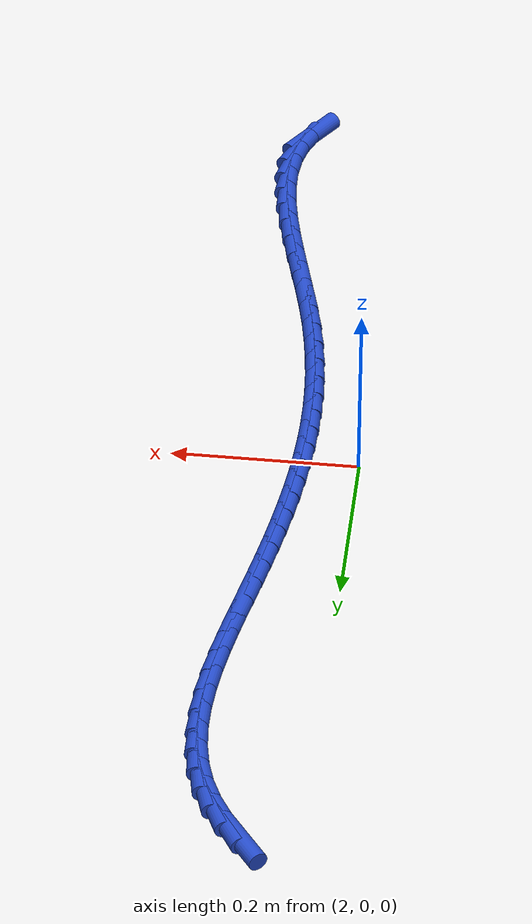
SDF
<sdf version="1.6">
 <world name="default">
  <model name="ground_plane">
   <static>1</static>
   <link name="link">
    <collision name="collision">
     <geometry><plane><normal>0 0 1</normal><size>100 100</size></plane></geometry>
     <surface><friction><ode><mu>100</mu><mu2>50</mu2></ode></friction></surface>
    </collision>
    <visual name="visual">
     <cast_shadows>0</cast_shadows>
     <geometry><plane><normal>0 0 1</normal><size>100 100</size></plane></geometry>
     <material>
      <script><uri>file://media/materials/scripts/gazebo.material</uri><name>Gazebo/WhiteGlow</name></script>
     </material>
    </visual>
   </link>
  </model>
  <model name="line">
   <link name="link_102">
    <pose>2.0627104055295264 0.5759210870289041 0.01 0 1.57 -0.9372216563298224</pose>
    <collision name="collision">
     <geometry><cylinder><radius>0.01</radius><length>0.08</length></cylinder></geometry>
    </collision>
    <visual name="visual">
     <material>
      <script><name>Gazebo/Blue</name><uri>file://media/materials/scripts/gazebo.material</uri></script>
     </material>
     <geometry><cylinder><radius>0.01</radius><length>0.08</length></cylinder></geometry>
    </visual>
   </link>
   <link name="link_103">
    <pose>2.0789447824061393 0.5538215944182481 0.01 0 1.57 -1.0368167671548376</pose>
    <collision name="collision">
     <geometry><cylinder><radius>0.01</radius><length>0.08</length></cylinder></geometry>
    </collision>
    <visual name="visual">
     <material>
      <script><name>Gazebo/Blue</name><uri>file://media/materials/scripts/gazebo.material</uri></script>
     </material>
     <geometry><cylinder><radius>0.01</radius><length>0.08</length></cylinder></geometry>
    </visual>
   </link>
   <link name="link_104">
    <pose>2.0926317182823566 0.5306734322668639 0.01 0 1.57 -1.15218257649914</pose>
    <collision name="collision">
     <geometry><cylinder><radius>0.01</radius><length>0.08</length></cylinder></geometry>
    </collision>
    <visual name="visual">
     <material>
      <script><name>Gazebo/Blue</name><uri>file://media/materials/scripts/gazebo.material</uri></script>
     </material>
     <geometry><cylinder><radius>0.01</radius><length>0.08</length></cylinder></geometry>
    </visual>
   </link>
   <link name="link_105">
    <pose>2.1034244549248156 0.5064152326901417 0.01 0 1.57 -1.2749694891609564</pose>
    <collision name="collision">
     <geometry><cylinder><radius>0.01</radius><length>0.08</length></cylinder></geometry>
    </collision>
    <visual name="visual">
     <material>
      <script><name>Gazebo/Blue</name><uri>file://media/materials/scripts/gazebo.material</uri></script>
     </material>
     <geometry><cylinder><radius>0.01</radius><length>0.08</length></cylinder></geometry>
    </visual>
   </link>
   <link name="link_106">
    <pose>2.1111575230042687 0.48104174627011514 0.01 0 1.57 -1.3857823774488294</pose>
    <collision name="collision">
     <geometry><cylinder><radius>0.01</radius><length>0.08</length></cylinder></geometry>
    </collision>
    <visual name="visual">
     <material>
      <script><name>Gazebo/Blue</name><uri>file://media/materials/scripts/gazebo.material</uri></script>
     </material>
     <geometry><cylinder><radius>0.01</radius><length>0.08</length></cylinder></geometry>
    </visual>
   </link>
   <link name="link_107">
    <pose>2.11609132046975 0.4546795519473599 0.01 0 1.57 -1.480763682097601</pose>
    <collision name="collision">
     <geometry><cylinder><radius>0.01</radius><length>0.08</length></cylinder></geometry>
    </collision>
    <visual name="visual">
     <material>
      <script><name>Gazebo/Blue</name><uri>file://media/materials/scripts/gazebo.material</uri></script>
     </material>
     <geometry><cylinder><radius>0.01</radius><length>0.08</length></cylinder></geometry>
    </visual>
   </link>
   <link name="link_108">
    <pose>2.1185473353641116 0.42747413926488914 0.01 0 1.57 -1.5600552838995518</pose>
    <collision name="collision">
     <geometry><cylinder><radius>0.01</radius><length>0.08</length></cylinder></geometry>
    </collision>
    <visual name="visual">
     <material>
      <script><name>Gazebo/Blue</name><uri>file://media/materials/scripts/gazebo.material</uri></script>
     </material>
     <geometry><cylinder><radius>0.01</radius><length>0.08</length></cylinder></geometry>
    </visual>
   </link>
   <link name="link_109">
    <pose>2.118847055730204 0.39957099776571603 0.01 0 1.57 1.516901439807371</pose>
    <collision name="collision">
     <geometry><cylinder><radius>0.01</radius><length>0.08</length></cylinder></geometry>
    </collision>
    <visual name="visual">
     <material>
      <script><name>Gazebo/Blue</name><uri>file://media/materials/scripts/gazebo.material</uri></script>
     </material>
     <geometry><cylinder><radius>0.01</radius><length>0.08</length></cylinder></geometry>
    </visual>
   </link>
   <link name="link_110">
    <pose>2.1173119696108804 0.3711156169928539 0.01 0 1.57 1.465566937811527</pose>
    <collision name="collision">
     <geometry><cylinder><radius>0.01</radius><length>0.08</length></cylinder></geometry>
    </collision>
    <visual name="visual">
     <material>
      <script><name>Gazebo/Blue</name><uri>file://media/materials/scripts/gazebo.material</uri></script>
     </material>
     <geometry><cylinder><radius>0.01</radius><length>0.08</length></cylinder></geometry>
    </visual>
   </link>
   <link name="link_111">
    <pose>2.1142635650489896 0.3422534864893157 0.01 0 1.57 1.4262167058683846</pose>
    <collision name="collision">
     <geometry><cylinder><radius>0.01</radius><length>0.08</length></cylinder></geometry>
    </collision>
    <visual name="visual">
     <material>
      <script><name>Gazebo/Blue</name><uri>file://media/materials/scripts/gazebo.material</uri></script>
     </material>
     <geometry><cylinder><radius>0.01</radius><length>0.08</length></cylinder></geometry>
    </visual>
   </link>
   <link name="link_112">
    <pose>2.1100233300873854 0.31313009579811496 0.01 0 1.57 1.3977589306277203</pose>
    <collision name="collision">
     <geometry><cylinder><radius>0.01</radius><length>0.08</length></cylinder></geometry>
    </collision>
    <visual name="visual">
     <material>
      <script><name>Gazebo/Blue</name><uri>file://media/materials/scripts/gazebo.material</uri></script>
     </material>
     <geometry><cylinder><radius>0.01</radius><length>0.08</length></cylinder></geometry>
    </visual>
   </link>
   <link name="link_113">
    <pose>2.1049127527689167 0.28389093446226454 0.01 0 1.57 1.379414170548931</pose>
    <collision name="collision">
     <geometry><cylinder><radius>0.01</radius><length>0.08</length></cylinder></geometry>
    </collision>
    <visual name="visual">
     <material>
      <script><name>Gazebo/Blue</name><uri>file://media/materials/scripts/gazebo.material</uri></script>
     </material>
     <geometry><cylinder><radius>0.01</radius><length>0.08</length></cylinder></geometry>
    </visual>
   </link>
   <link name="link_114">
    <pose>2.099253321136437 0.2546814920247779 0.01 0 1.57 1.370754401483472</pose>
    <collision name="collision">
     <geometry><cylinder><radius>0.01</radius><length>0.08</length></cylinder></geometry>
    </collision>
    <visual name="visual">
     <material>
      <script><name>Gazebo/Blue</name><uri>file://media/materials/scripts/gazebo.material</uri></script>
     </material>
     <geometry><cylinder><radius>0.01</radius><length>0.08</length></cylinder></geometry>
    </visual>
   </link>
   <link name="link_115">
    <pose>2.093366523232796 0.22564725802866795 0.01 0 1.57 1.3717136348057213</pose>
    <collision name="collision">
     <geometry><cylinder><radius>0.01</radius><length>0.08</length></cylinder></geometry>
    </collision>
    <visual name="visual">
     <material>
      <script><name>Gazebo/Blue</name><uri>file://media/materials/scripts/gazebo.material</uri></script>
     </material>
     <geometry><cylinder><radius>0.01</radius><length>0.08</length></cylinder></geometry>
    </visual>
   </link>
   <link name="link_116">
    <pose>2.087573334248945 0.1969333083604876 0.01 0 1.57 1.3803424710623267</pose>
    <collision name="collision">
     <geometry><cylinder><radius>0.01</radius><length>0.08</length></cylinder></geometry>
    </collision>
    <visual name="visual">
     <material>
      <script><name>Gazebo/Blue</name><uri>file://media/materials/scripts/gazebo.material</uri></script>
     </material>
     <geometry><cylinder><radius>0.01</radius><length>0.08</length></cylinder></geometry>
    </visual>
   </link>
   <link name="link_117">
    <pose>2.082114853119767 0.16862029225788003 0.01 0 1.57 1.392193257259937</pose>
    <collision name="collision">
     <geometry><cylinder><radius>0.01</radius><length>0.08</length></cylinder></geometry>
    </collision>
    <visual name="visual">
     <material>
      <script><name>Gazebo/Blue</name><uri>file://media/materials/scripts/gazebo.material</uri></script>
     </material>
     <geometry><cylinder><radius>0.01</radius><length>0.08</length></cylinder></geometry>
    </visual>
   </link>
   <link name="link_118">
    <pose>2.0770663966589997 0.14065514229422976 0.01 0 1.57 1.4067287921422038</pose>
    <collision name="collision">
     <geometry><cylinder><radius>0.01</radius><length>0.08</length></cylinder></geometry>
    </collision>
    <visual name="visual">
     <material>
      <script><name>Gazebo/Blue</name><uri>file://media/materials/scripts/gazebo.material</uri></script>
     </material>
     <geometry><cylinder><radius>0.01</radius><length>0.08</length></cylinder></geometry>
    </visual>
   </link>
   <link name="link_119">
    <pose>2.072482658633461 0.11296815689068805 0.01 0 1.57 1.4239518117314232</pose>
    <collision name="collision">
     <geometry><cylinder><radius>0.01</radius><length>0.08</length></cylinder></geometry>
    </collision>
    <visual name="visual">
     <material>
      <script><name>Gazebo/Blue</name><uri>file://media/materials/scripts/gazebo.material</uri></script>
     </material>
     <geometry><cylinder><radius>0.01</radius><length>0.08</length></cylinder></geometry>
    </visual>
   </link>
   <link name="link_120">
    <pose>2.068418332809969 0.08548963446840664 0.01 0 1.57 1.4438221840645111</pose>
    <collision name="collision">
     <geometry><cylinder><radius>0.01</radius><length>0.08</length></cylinder></geometry>
    </collision>
    <visual name="visual">
     <material>
      <script><name>Gazebo/Blue</name><uri>file://media/materials/scripts/gazebo.material</uri></script>
     </material>
     <geometry><cylinder><radius>0.01</radius><length>0.08</length></cylinder></geometry>
    </visual>
   </link>
   <link name="link_121">
    <pose>2.064928112955342 0.05814987344853627 0.01 0 1.57 1.4662523359406185</pose>
    <collision name="collision">
     <geometry><cylinder><radius>0.01</radius><length>0.08</length></cylinder></geometry>
    </collision>
    <visual name="visual">
     <material>
      <script><name>Gazebo/Blue</name><uri>file://media/materials/scripts/gazebo.material</uri></script>
     </material>
     <geometry><cylinder><radius>0.01</radius><length>0.08</length></cylinder></geometry>
    </visual>
   </link>
   <link name="link_122">
    <pose>2.0620666928363987 0.030879172252228703 0.01 0 1.57 1.4911040980571764</pose>
    <collision name="collision">
     <geometry><cylinder><radius>0.01</radius><length>0.08</length></cylinder></geometry>
    </collision>
    <visual name="visual">
     <material>
      <script><name>Gazebo/Blue</name><uri>file://media/materials/scripts/gazebo.material</uri></script>
     </material>
     <geometry><cylinder><radius>0.01</radius><length>0.08</length></cylinder></geometry>
    </visual>
   </link>
   <link name="link_123">
    <pose>2.0598887662199576 0.0036078293006353776 0.01 0 1.57 1.5181876163176007</pose>
    <collision name="collision">
     <geometry><cylinder><radius>0.01</radius><length>0.08</length></cylinder></geometry>
    </collision>
    <visual name="visual">
     <material>
      <script><name>Gazebo/Blue</name><uri>file://media/materials/scripts/gazebo.material</uri></script>
     </material>
     <geometry><cylinder><radius>0.01</radius><length>0.08</length></cylinder></geometry>
    </visual>
   </link>
   <link name="link_124">
    <pose>2.0584490268728364 -0.023733856985092366 0.01 0 1.57 1.5472629151905024</pose>
    <collision name="collision">
     <geometry><cylinder><radius>0.01</radius><length>0.08</length></cylinder></geometry>
    </collision>
    <visual name="visual">
     <material>
      <script><name>Gazebo/Blue</name><uri>file://media/materials/scripts/gazebo.material</uri></script>
     </material>
     <geometry><cylinder><radius>0.01</radius><length>0.08</length></cylinder></geometry>
    </visual>
   </link>
   <link name="link_125">
    <pose>2.057802168561855 -0.05121558818380304 0.01 0 1.57 -1.56354814093621</pose>
    <collision name="collision">
     <geometry><cylinder><radius>0.01</radius><length>0.08</length></cylinder></geometry>
    </collision>
    <visual name="visual">
     <material>
      <script><name>Gazebo/Blue</name><uri>file://media/materials/scripts/gazebo.material</uri></script>
     </material>
     <geometry><cylinder><radius>0.01</radius><length>0.08</length></cylinder></geometry>
    </visual>
   </link>
   <link name="link_126">
    <pose>2.0580028850538303 -0.07890706587434526 0.01 0 1.57 -1.531383477310392</pose>
    <collision name="collision">
     <geometry><cylinder><radius>0.01</radius><length>0.08</length></cylinder></geometry>
    </collision>
    <visual name="visual">
     <material>
      <script><name>Gazebo/Blue</name><uri>file://media/materials/scripts/gazebo.material</uri></script>
     </material>
     <geometry><cylinder><radius>0.01</radius><length>0.08</length></cylinder></geometry>
    </visual>
   </link>
   <link name="link_127">
    <pose>2.0591058701155815 -0.10687799163556766 0.01 0 1.57 -1.4981861406627703</pose>
    <collision name="collision">
     <geometry><cylinder><radius>0.01</radius><length>0.08</length></cylinder></geometry>
    </collision>
    <visual name="visual">
     <material>
      <script><name>Gazebo/Blue</name><uri>file://media/materials/scripts/gazebo.material</uri></script>
     </material>
     <geometry><cylinder><radius>0.01</radius><length>0.08</length></cylinder></geometry>
    </visual>
   </link>
   <link name="link_128">
    <pose>2.0611658175139276 -0.13519806704631881 0.01 0 1.57 -1.4643209817353269</pose>
    <collision name="collision">
     <geometry><cylinder><radius>0.01</radius><length>0.08</length></cylinder></geometry>
    </collision>
    <visual name="visual">
     <material>
      <script><name>Gazebo/Blue</name><uri>file://media/materials/scripts/gazebo.material</uri></script>
     </material>
     <geometry><cylinder><radius>0.01</radius><length>0.08</length></cylinder></geometry>
    </visual>
   </link>
   <link name="link_129">
    <pose>2.0642374210156857 -0.16393699368544723 0.01 0 1.57 -1.4301535495679434</pose>
    <collision name="collision">
     <geometry><cylinder><radius>0.01</radius><length>0.08</length></cylinder></geometry>
    </collision>
    <visual name="visual">
     <material>
      <script><name>Gazebo/Blue</name><uri>file://media/materials/scripts/gazebo.material</uri></script>
     </material>
     <geometry><cylinder><radius>0.01</radius><length>0.08</length></cylinder></geometry>
    </visual>
   </link>
   <link name="link_130">
    <pose>2.0683753743876747 -0.19316447313180163 0.01 0 1.57 -1.39603651116828</pose>
    <collision name="collision">
     <geometry><cylinder><radius>0.01</radius><length>0.08</length></cylinder></geometry>
    </collision>
    <visual name="visual">
     <material>
      <script><name>Gazebo/Blue</name><uri>file://media/materials/scripts/gazebo.material</uri></script>
     </material>
     <geometry><cylinder><radius>0.01</radius><length>0.08</length></cylinder></geometry>
    </visual>
   </link>
   <link name="link_131">
    <pose>2.073634371396714 -0.2229502069642305 0.01 0 1.57 -1.3624804067249878</pose>
    <collision name="collision">
     <geometry><cylinder><radius>0.01</radius><length>0.08</length></cylinder></geometry>
    </collision>
    <visual name="visual">
     <material>
      <script><name>Gazebo/Blue</name><uri>file://media/materials/scripts/gazebo.material</uri></script>
     </material>
     <geometry><cylinder><radius>0.01</radius><length>0.08</length></cylinder></geometry>
    </visual>
   </link>
   <link name="link_132">
    <pose>2.080062472226499 -0.25336001485635945 0.01 0 1.57 -1.3357986131745667</pose>
    <collision name="collision">
     <geometry><cylinder><radius>0.01</radius><length>0.08</length></cylinder></geometry>
    </collision>
    <visual name="visual">
     <material>
      <script><name>Gazebo/Blue</name><uri>file://media/materials/scripts/gazebo.material</uri></script>
     </material>
     <geometry><cylinder><radius>0.01</radius><length>0.08</length></cylinder></geometry>
    </visual>
   </link>
   <link name="link_133">
    <pose>2.0874759242137078 -0.2843240619667355 0.01 0 1.57 -1.3225695732922633</pose>
    <collision name="collision">
     <geometry><cylinder><radius>0.01</radius><length>0.08</length></cylinder></geometry>
    </collision>
    <visual name="visual">
     <material>
      <script><name>Gazebo/Blue</name><uri>file://media/materials/scripts/gazebo.material</uri></script>
     </material>
     <geometry><cylinder><radius>0.01</radius><length>0.08</length></cylinder></geometry>
    </visual>
   </link>
   <link name="link_134">
    <pose>2.0954041098969585 -0.31560464309825376 0.01 0 1.57 -1.3223005481600059</pose>
    <collision name="collision">
     <geometry><cylinder><radius>0.01</radius><length>0.08</length></cylinder></geometry>
    </collision>
    <visual name="visual">
     <material>
      <script><name>Gazebo/Blue</name><uri>file://media/materials/scripts/gazebo.material</uri></script>
     </material>
     <geometry><cylinder><radius>0.01</radius><length>0.08</length></cylinder></geometry>
    </visual>
   </link>
   <link name="link_135">
    <pose>2.1033586108942863 -0.34695363613653907 0.01 0 1.57 -1.334894325843366</pose>
    <collision name="collision">
     <geometry><cylinder><radius>0.01</radius><length>0.08</length></cylinder></geometry>
    </collision>
    <visual name="visual">
     <material>
      <script><name>Gazebo/Blue</name><uri>file://media/materials/scripts/gazebo.material</uri></script>
     </material>
     <geometry><cylinder><radius>0.01</radius><length>0.08</length></cylinder></geometry>
    </visual>
   </link>
   <link name="link_136">
    <pose>2.110851008823728 -0.37812291896721634 0.01 0 1.57 -1.3611209312755346</pose>
    <collision name="collision">
     <geometry><cylinder><radius>0.01</radius><length>0.08</length></cylinder></geometry>
    </collision>
    <visual name="visual">
     <material>
      <script><name>Gazebo/Blue</name><uri>file://media/materials/scripts/gazebo.material</uri></script>
     </material>
     <geometry><cylinder><radius>0.01</radius><length>0.08</length></cylinder></geometry>
    </visual>
   </link>
   <link name="link_137">
    <pose>2.1173928853033175 -0.4088643694759105 0.01 0 1.57 -1.4026711838902701</pose>
    <collision name="collision">
     <geometry><cylinder><radius>0.01</radius><length>0.08</length></cylinder></geometry>
    </collision>
    <visual name="visual">
     <material>
      <script><name>Gazebo/Blue</name><uri>file://media/materials/scripts/gazebo.material</uri></script>
     </material>
     <geometry><cylinder><radius>0.01</radius><length>0.08</length></cylinder></geometry>
    </visual>
   </link>
   <link name="link_138">
    <pose>2.122495821951092 -0.4389298655482465 0.01 0 1.57 -1.4622533126625372</pose>
    <collision name="collision">
     <geometry><cylinder><radius>0.01</radius><length>0.08</length></cylinder></geometry>
    </collision>
    <visual name="visual">
     <material>
      <script><name>Gazebo/Blue</name><uri>file://media/materials/scripts/gazebo.material</uri></script>
     </material>
     <geometry><cylinder><radius>0.01</radius><length>0.08</length></cylinder></geometry>
    </visual>
   </link>
   <link name="link_139">
    <pose>2.125671400385087 -0.46807128506984913 0.01 0 1.57 -1.5436373644242019</pose>
    <collision name="collision">
     <geometry><cylinder><radius>0.01</radius><length>0.08</length></cylinder></geometry>
    </collision>
    <visual name="visual">
     <material>
      <script><name>Gazebo/Blue</name><uri>file://media/materials/scripts/gazebo.material</uri></script>
     </material>
     <geometry><cylinder><radius>0.01</radius><length>0.08</length></cylinder></geometry>
    </visual>
   </link>
   <link name="link_140">
    <pose>2.126431202223338 -0.49604050592634336 0.01 0 1.57 1.4901998447057418</pose>
    <collision name="collision">
     <geometry><cylinder><radius>0.01</radius><length>0.08</length></cylinder></geometry>
    </collision>
    <visual name="visual">
     <material>
      <script><name>Gazebo/Blue</name><uri>file://media/materials/scripts/gazebo.material</uri></script>
     </material>
     <geometry><cylinder><radius>0.01</radius><length>0.08</length></cylinder></geometry>
    </visual>
   </link>
   <link name="link_141">
    <pose>2.12428680908388 -0.5225894060033541 0.01 0 1.57 1.351820382204319</pose>
    <collision name="collision">
     <geometry><cylinder><radius>0.01</radius><length>0.08</length></cylinder></geometry>
    </collision>
    <visual name="visual">
     <material>
      <script><name>Gazebo/Blue</name><uri>file://media/materials/scripts/gazebo.material</uri></script>
     </material>
     <geometry><cylinder><radius>0.01</radius><length>0.08</length></cylinder></geometry>
    </visual>
   </link>
   <link name="link_142">
    <pose>2.11874980258475 -0.5474698631865064 0.01 0 1.57 1.1815931341910846</pose>
    <collision name="collision">
     <geometry><cylinder><radius>0.01</radius><length>0.08</length></cylinder></geometry>
    </collision>
    <visual name="visual">
     <material>
      <script><name>Gazebo/Blue</name><uri>file://media/materials/scripts/gazebo.material</uri></script>
     </material>
     <geometry><cylinder><radius>0.01</radius><length>0.08</length></cylinder></geometry>
    </visual>
   </link>
   <link name="link_143">
    <pose>2.109331764343982 -0.5704337553614248 0.01 0 1.57 0.9854161270895033</pose>
    <collision name="collision">
     <geometry><cylinder><radius>0.01</radius><length>0.08</length></cylinder></geometry>
    </collision>
    <visual name="visual">
     <material>
      <script><name>Gazebo/Blue</name><uri>file://media/materials/scripts/gazebo.material</uri></script>
     </material>
     <geometry><cylinder><radius>0.01</radius><length>0.08</length></cylinder></geometry>
    </visual>
   </link>
  </model>
 </world>
</sdf>
